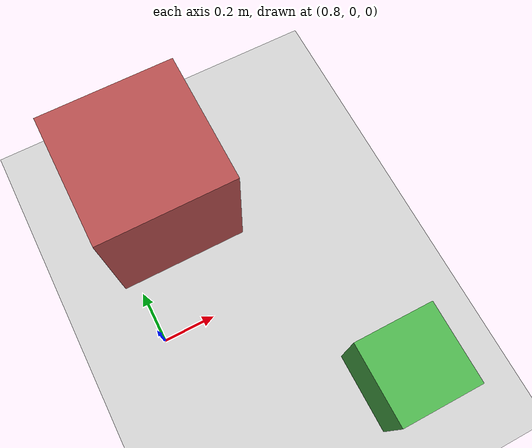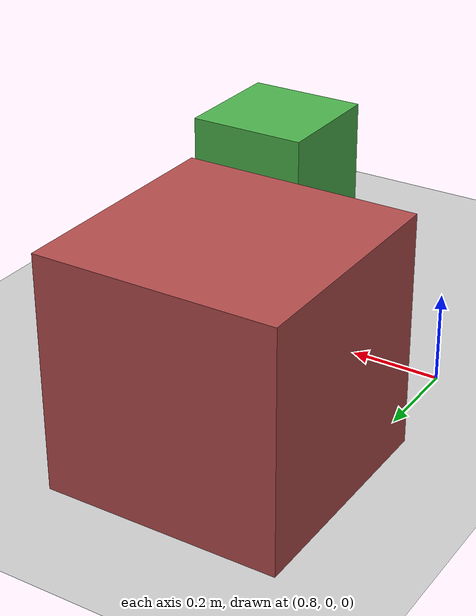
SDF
<?xml version="1.0"?>
<sdf version="1.6">
  <world name="qoobot_earth">

    <!-- Physics -->
    <physics type="ode">
      <max_step_size>0.001</max_step_size>
      <real_time_factor>1.0</real_time_factor>
      <real_time_update_rate>1000</real_time_update_rate>
      <gravity>0 0 -9.81</gravity>
    </physics>

    <!-- Light -->
    <light name="sun" type="directional">
      <pose>0 0 10 0 0 0</pose>
      <diffuse>0.8 0.8 0.8 1</diffuse>
      <specular>0.2 0.2 0.2 1</specular>
      <direction>0 0 -1</direction>
      <cast_shadows>true</cast_shadows>
    </light>

    <!-- Ground Plane -->
    <model name="ground_plane">
      <static>true</static>
      <link name="link">
        <collision name="collision">
          <geometry>
            <plane>
              <normal>0 0 1</normal>
              <size>20 20</size>
            </plane>
          </geometry>
          <surface>
            <friction>
              <ode>
                <mu>1.0</mu>
                <mu2>1.0</mu2>
              </ode>
            </friction>
          </surface>
        </collision>
        <visual name="visual">
          <geometry>
            <plane>
              <normal>0 0 1</normal>
              <size>20 20</size>
            </plane>
          </geometry>
          <material>
            <ambient>0.8 0.8 0.8 1</ambient>
            <diffuse>0.8 0.8 0.8 1</diffuse>
          </material>
        </visual>
      </link>
    </model>

    <!-- Static Obstacle Blocks (对标 unitree earth.world) -->
    <model name="block_1">
      <static>true</static>
      <pose>1.0 0.5 0.25 0 0 0</pose>
      <link name="link">
        <collision name="collision">
          <geometry><box><size>0.5 0.5 0.5</size></box></geometry>
        </collision>
        <visual name="visual">
          <geometry><box><size>0.5 0.5 0.5</size></box></geometry>
          <material>
            <ambient>0.7 0.3 0.3 1</ambient>
          </material>
        </visual>
      </link>
    </model>

    <model name="block_2">
      <static>true</static>
      <pose>1.5 -0.5 0.15 0 0 0</pose>
      <link name="link">
        <collision name="collision">
          <geometry><box><size>0.3 0.3 0.3</size></box></geometry>
        </collision>
        <visual name="visual">
          <geometry><box><size>0.3 0.3 0.3</size></box></geometry>
          <material>
            <ambient>0.3 0.7 0.3 1</ambient>
          </material>
        </visual>
      </link>
    </model>

  </world>
</sdf>
